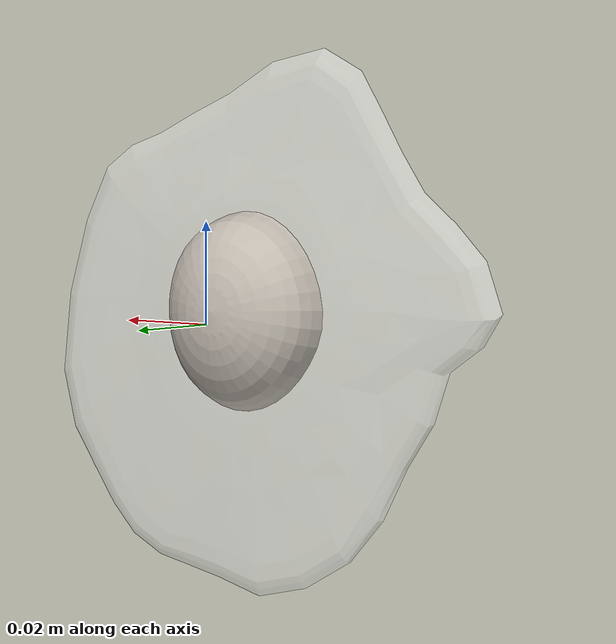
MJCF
<mujoco model="Egg_Cracked_11">
  <compiler autolimits="true" boundmass="0.01" angle="radian"/>
  <default>
    <default class="/">
      <default class="__VISUAL_MJT__">
        <geom contype="0" conaffinity="0" group="0"/>
      </default>
      <default class="__STRUCTURAL_MJT__">
        <geom contype="8" conaffinity="15" group="4" friction="0.90000000000000002 0.90000000000000002 0.001" solref="0.025000000000000001 1" solimp="0.998 0.998 0.001"/>
      </default>
      <default class="__DYNAMIC_MJT__">
        <geom contype="1" conaffinity="15" group="4" friction="0.90000000000000002 0.90000000000000002 0.001" solref="0.025000000000000001 1" solimp="0.998 0.998 0.001"/>
      </default>
    </default>
  </default>
  <asset>
    <texture name="Fried_Egg_White_Uncooked_Mat" type="2d" file="Fried_Egg_AlbedoTransparency.png"/>
    <material name="material_Fried_Egg_White_Uncooked_Mat" class="/" texture="Fried_Egg_White_Uncooked_Mat" specular="0.5" shininess="0.5" rgba="1 1 1 0.5"/>
    <texture name="Fried_Egg_Yolk_Mat" type="2d" file="Fried_Egg_AlbedoTransparency.png"/>
    <material name="material_Fried_Egg_Yolk_Mat" class="/" texture="Fried_Egg_Yolk_Mat" specular="0.5" shininess="0.5" rgba="1 1 1 1"/>
    <mesh name="Egg_Cracked_11_fried_egg_28_0" class="/" file="Egg_Cracked_11_fried_egg_28/Egg_Cracked_11_fried_egg_28_0.obj" scale="1 1 1"/>
    <mesh name="Egg_Cracked_11_fried_egg_28_1" class="/" file="Egg_Cracked_11_fried_egg_28/Egg_Cracked_11_fried_egg_28_1.obj" scale="1 1 1"/>
  </asset>
  <worldbody>
    <body name="Egg_Cracked_11">
      <joint name="Egg_Cracked_11_free" class="/" type="free" pos="0 0 0" axis="0 0 1" stiffness="0" range="0 0" armature="0" damping="0.10000000000000001" frictionloss="0"/>
      <body name="Egg_Cracked_11_fried_egg_28" pos="-0.0041000000000000003 -0.01023 0.0038" quat="1 0 0 0">
        <geom name="Egg_Cracked_11_fried_egg_28_0" class="__VISUAL_MJT__" type="mesh" material="material_Fried_Egg_White_Uncooked_Mat" shellinertia="false" mesh="Egg_Cracked_11_fried_egg_28_0"/>
        <geom name="Egg_Cracked_11_fried_egg_28_1" class="__VISUAL_MJT__" type="mesh" material="material_Fried_Egg_Yolk_Mat" shellinertia="false" mesh="Egg_Cracked_11_fried_egg_28_1"/>
        <geom name="Egg_Cracked_11_PrimitiveCollider_0" class="__DYNAMIC_MJT__" type="box" size="0.054962273687124252 0.010231256484985352 0.054077528417110443" rgba="0 1 0 1" pos="-0.0040968693792819977 0.010231256484985352 -0.0038032755255699158" quat="1 0 0 0"/>
      </body>
    </body>
  </worldbody>
</mujoco>
